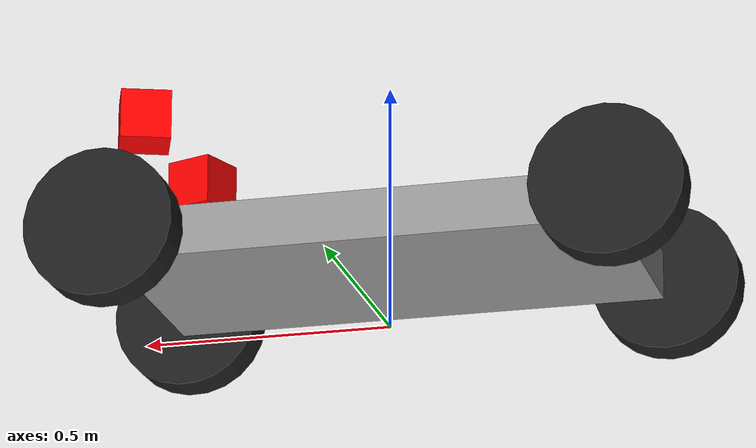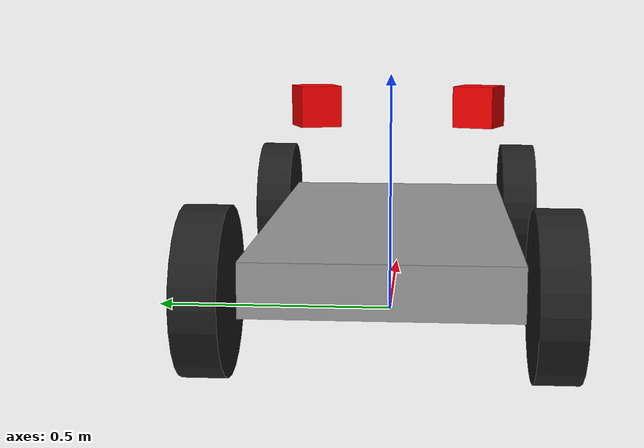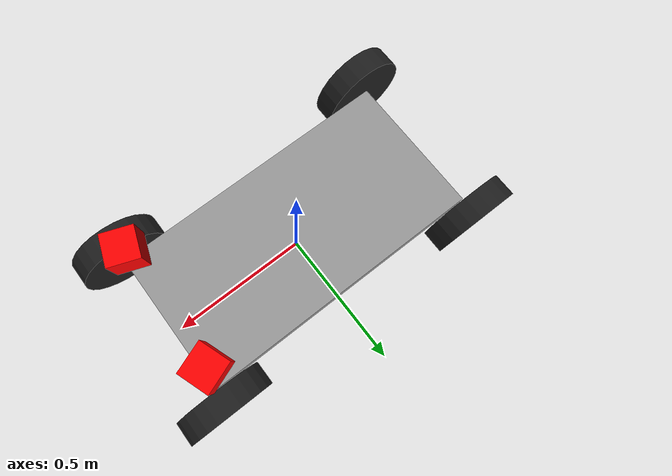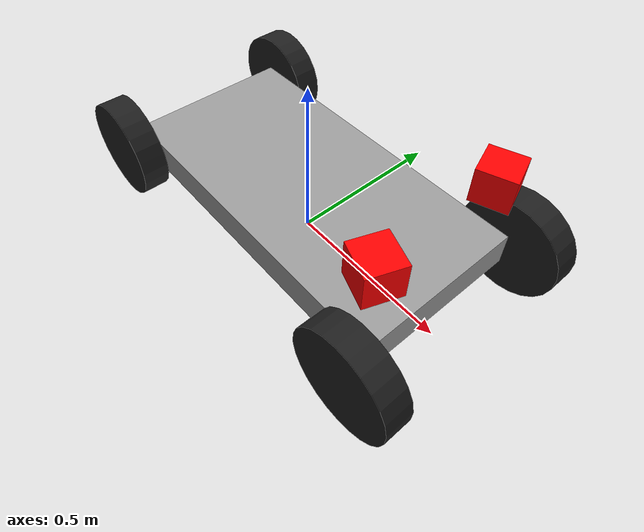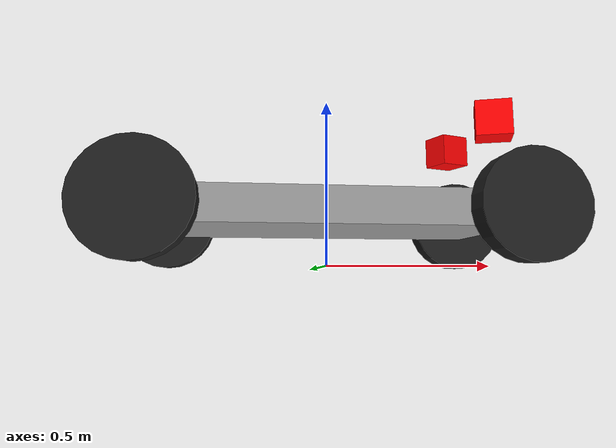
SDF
<?xml version="1.0" ?>

<sdf version="1.5">
  <model name="cart_front_steer">
    <link name="chassis">
      <pose>0 0 0.15  0 0 0</pose>
      <inertial>
        <pose>0 0 0  0 0 0</pose>
        <mass>5</mass>
        <inertia>
          <ixx>0.21666666666666667</ixx>
          <iyy>0.8416666666666667</iyy>
          <izz>1.0416666666666667</izz>
          <ixy>0</ixy>
          <ixz>0</ixz>
          <iyz>0</iyz>
        </inertia>
      </inertial>
      <collision name="collision">
        <geometry>
          <box>
            <size>1.0 0.5 0.1</size>
          </box>
        </geometry>
      </collision>
      <visual name="visual">
        <geometry>
          <box>
            <size>1.0 0.5 0.1</size>
          </box>
        </geometry>
        <material>
          <script>
            <uri>file://media/materials/scripts/gazebo.material</uri>
            <name>Gazebo/Grey</name>
          </script>
        </material>
      </visual>
    </link>

    <link name="wheel_front_left">
      <pose>0.5 0.298 0.15  -1.5707963267948966 -0.08726646259971647 0</pose>
      <inertial>
        <mass>0.5</mass>
        <inertia>
          <ixx>0.0030791666666666667</ixx>
          <iyy>0.0030791666666666667</iyy>
          <izz>0.005625</izz>
          <ixy>0</ixy>
          <ixz>0</ixz>
          <iyz>0</iyz>
        </inertia>
      </inertial>
      <collision name="collision">
        <geometry>
          <cylinder>
            <radius>0.15</radius>
            <length>0.08</length>
          </cylinder>
        </geometry>
      </collision>
      <visual name="visual">
        <geometry>
          <cylinder>
            <radius>0.15</radius>
            <length>0.08</length>
          </cylinder>
        </geometry>
        <material>
          <script>
            <uri>file://media/materials/scripts/gazebo.material</uri>
            <name>Gazebo/Black</name>
          </script>
        </material>
      </visual>
    </link>

    <joint name="wheel_front_left_steer_spin" type="fixed">
      <parent>chassis</parent>
      <child>wheel_front_left</child>
      <axis>
        <xyz>0 0 -1</xyz>
      </axis>
    </joint>

    <link name="wheel_front_right">
      <pose>0.5 -0.298 0.15  -1.5707963267948966 -0.08726646259971647 0</pose>
      <inertial>
        <mass>0.5</mass>
        <inertia>
          <ixx>0.0030791666666666667</ixx>
          <iyy>0.0030791666666666667</iyy>
          <izz>0.005625</izz>
          <ixy>0</ixy>
          <ixz>0</ixz>
          <iyz>0</iyz>
        </inertia>
      </inertial>
      <collision name="collision">
        <geometry>
          <cylinder>
            <radius>0.15</radius>
            <length>0.08</length>
          </cylinder>
        </geometry>
      </collision>
      <visual name="visual">
        <geometry>
          <cylinder>
            <radius>0.15</radius>
            <length>0.08</length>
          </cylinder>
        </geometry>
        <material>
          <script>
            <uri>file://media/materials/scripts/gazebo.material</uri>
            <name>Gazebo/Black</name>
          </script>
        </material>
      </visual>
    </link>

    <joint name="wheel_front_right_steer_spin" type="fixed">
      <parent>chassis</parent>
      <child>wheel_front_right</child>
      <axis>
        <xyz>0 0 1</xyz>
      </axis>
    </joint>

    <link name="wheel_rear_left">
      <pose>-0.5 0.298 0.15  -1.5707963267948966 0 0</pose>
      <inertial>
        <mass>0.5</mass>
        <inertia>
          <ixx>0.0030791666666666667</ixx>
          <iyy>0.0030791666666666667</iyy>
          <izz>0.005625</izz>
          <ixy>0</ixy>
          <ixz>0</ixz>
          <iyz>0</iyz>
        </inertia>
      </inertial>
      <collision name="collision">
        <geometry>
          <cylinder>
            <radius>0.15</radius>
            <length>0.08</length>
          </cylinder>
        </geometry>
      </collision>
      <visual name="visual">
        <geometry>
          <cylinder>
            <radius>0.15</radius>
            <length>0.08</length>
          </cylinder>
        </geometry>
        <material>
          <script>
            <uri>file://media/materials/scripts/gazebo.material</uri>
            <name>Gazebo/Black</name>
          </script>
        </material>
      </visual>
    </link>

    <joint name="wheel_rear_left_spin" type="fixed">
      <parent>chassis</parent>
      <child>wheel_rear_left</child>
      <axis>
        <xyz>0 0 -1</xyz>
      </axis>
    </joint>

    <link name="wheel_rear_right">
      <pose>-0.5 -0.298 0.15  -1.5707963267948966 0 0</pose>
      <inertial>
        <mass>0.5</mass>
        <inertia>
          <ixx>0.0030791666666666667</ixx>
          <iyy>0.0030791666666666667</iyy>
          <izz>0.005625</izz>
          <ixy>0</ixy>
          <ixz>0</ixz>
          <iyz>0</iyz>
        </inertia>
      </inertial>
      <collision name="collision">
        <geometry>
          <cylinder>
            <radius>0.15</radius>
            <length>0.08</length>
          </cylinder>
        </geometry>
      </collision>
      <visual name="visual">
        <geometry>
          <cylinder>
            <radius>0.15</radius>
            <length>0.08</length>
          </cylinder>
        </geometry>
        <material>
          <script>
            <uri>file://media/materials/scripts/gazebo.material</uri>
            <name>Gazebo/Black</name>
          </script>
        </material>
      </visual>
    </link>

    <joint name="wheel_rear_right_spin" type="fixed">
      <parent>chassis</parent>
      <child>wheel_rear_right</child>
      <axis>
        <xyz>0 0 1</xyz>
      </axis>
    </joint>

    <link name="left_laser_sensor_link">
      <pose>0.45 0.2 0.4 0 0 0.349066</pose>
      <collision name="collision">
        <geometry>
          <box>
            <size>0.1 0.1 0.1</size>
          </box>
        </geometry>
      </collision>
      <visual name="visual">
        <geometry>
          <box>
            <size>0.1 0.1 0.1</size>
          </box>
        </geometry>
        <material name="orange">
          <ambient>1 0 0 1</ambient>
          <diffuse>1 0 0 1</diffuse>
          <specular>0.1 0.1 0.1 1</specular>
        </material>
      </visual>
      <sensor type="ray" name="ray_left">
	<pose>0 0 0 0 0 0</pose>
        <update_rate>35.0</update_rate>
	<visualize>true</visualize>
        <ray name="laser_scan_left">
          <scan>
            <horizontal>
              <samples>360</samples>
              <resolution>1</resolution>
              <min_angle>-0.4974188</min_angle>
              <max_angle>0.4974188</max_angle>
            </horizontal>
          </scan>
          <range>
            <min>0.3</min>
            <max>2.0</max>
            <resolution>0.01</resolution>
          </range>
        </ray>
        <plugin name="laser_scan_controller_left" filename="libgazebo_ros_laser.so">
          <frameName>camera_left</frameName>
          <topicName>scan</topicName>
        </plugin>
      </sensor>
    </link>

    <joint name="laser_sensor_joint_left" type="fixed">
      <parent>chassis</parent>
      <child>left_laser_sensor_link</child>
      <axis>
        <xyz>0 0 1</xyz>
      </axis>
    </joint>

    <link name="right_laser_sensor_link">
      <pose>0.45 -0.2 0.4 0 0 -0.349066</pose>
      <collision name="collision">
        <geometry>
          <box>
            <size>0.1 0.1 0.1</size>
          </box>
        </geometry>
      </collision>
      <visual name="visual">
        <geometry>
          <box>
            <size>0.1 0.1 0.1</size>
          </box>
        </geometry>
        <material name="orange">
          <ambient>1 0 0 1</ambient>
          <diffuse>1 0 0 1</diffuse>
          <specular>0.1 0.1 0.1 1</specular>
        </material>
      </visual>
      <sensor type="ray" name="ray_right">
	<pose>0 0 0 0 0 0</pose>
        <update_rate>35.0</update_rate>
	<visualize>true</visualize>
        <ray name="laser_scan_right">
          <scan>
            <horizontal>
              <samples>360</samples>
              <resolution>1</resolution>
              <min_angle>-0.4974188</min_angle>
              <max_angle>0.4974188</max_angle>
            </horizontal>
          </scan>
          <range>
            <min>0.3</min>
            <max>2.0</max>
            <resolution>0.01</resolution>
          </range>
        </ray>
        <plugin name="laser_scan_controller_right" filename="libgazebo_ros_laser.so">
          <frameName>camera_right</frameName>
          <topicName>scan</topicName>
        </plugin>
      </sensor>
    </link>

    <joint name="laser_sensor_joint_right" type="fixed">
      <parent>chassis</parent>
      <child>right_laser_sensor_link</child>
      <axis>
        <xyz>0 0 1</xyz>
      </axis>
    </joint>

    <link name="left_camera_link">
      <pose>0.45 0.2 0.4 0 0 0.349066</pose>
      <collision name="collision">
        <geometry>
          <box>
            <size>0.1 0.1 0.1</size>
          </box>
        </geometry>
      </collision>
      <visual name="visual">
        <geometry>
          <box>
            <size>0.1 0.1 0.1</size>
          </box>
        </geometry>
        <material name="orange">
          <ambient>1 0 0 1</ambient>
          <diffuse>1 0 0 1</diffuse>
          <specular>0.1 0.1 0.1 1</specular>
        </material>
      </visual>
      <sensor type="camera" name="camera_left">
	<pose>0 0 0 0 0 0</pose>
        <update_rate>30.0</update_rate>
        <camera name="left_camera">
	  <pose>0 0 0 0 0 0</pose>
          <horizontal_fov>1.55</horizontal_fov>
          <image>
            <width>640</width>
            <height>480</height>
            <format>L8</format>
          </image>
          <clip>
            <near>0.02</near>
            <far>50</far>
          </clip>
	  <noise>
            <type>gaussian</type>
            <mean>0.0</mean>
            <stddev>0.007</stddev>
          </noise>
        </camera>
        <plugin name="left_camera_controller" filename="libgazebo_ros_camera.so">
          <alwaysOn>true</alwaysOn>
          <updateRate>30.0</updateRate>
          <cameraName>gazebo_left_camera</cameraName>
          <imageTopicName>image_raw</imageTopicName>
          <cameraInfoTopicName>camera_info</cameraInfoTopicName>
          <hackBaseline>0.07</hackBaseline>
          <frameName>left_camera_link</frameName>
        </plugin>
      </sensor>
    </link>

    <joint name="camera_joint_left" type="fixed">
      <parent>chassis</parent>
      <child>left_camera_link</child>
      <axis>
        <xyz>0 0 1</xyz>
      </axis>
    </joint>

    <link name="right_camera_link">
      <pose>0.45 -0.2 0.4 0 0 -0.349066</pose>
      <collision name="collision">
        <geometry>
          <box>
            <size>0.1 0.1 0.1</size>
          </box>
        </geometry>
      </collision>
      <visual name="visual">
        <geometry>
          <box>
            <size>0.1 0.1 0.1</size>
          </box>
        </geometry>
        <material name="orange">
          <ambient>1 0 0 1</ambient>
          <diffuse>1 0 0 1</diffuse>
          <specular>0.1 0.1 0.1 1</specular>
        </material>
      </visual>
      <sensor type="camera" name="camera_right">
	<pose>0 0 0 0 0 0</pose>
        <update_rate>30.0</update_rate>
        <camera name="right_camera">
	  <pose>0 0 0 0 0 0</pose>
          <horizontal_fov>1.55</horizontal_fov>
          <image>
            <width>640</width>
            <height>480</height>
            <format>L8</format>
          </image>
          <clip>
            <near>0.02</near>
            <far>50</far>
          </clip>
	  <noise>
            <type>gaussian</type>
            <mean>0.0</mean>
            <stddev>0.007</stddev>
          </noise>
        </camera>
        <plugin name="right_camera_controller" filename="libgazebo_ros_camera.so">
          <alwaysOn>true</alwaysOn>
          <updateRate>30.0</updateRate>
          <cameraName>gazebo_right_camera</cameraName>
          <imageTopicName>image_raw</imageTopicName>
          <cameraInfoTopicName>camera_info</cameraInfoTopicName>
          <hackBaseline>0.07</hackBaseline>
          <frameName>right_camera_link</frameName>
        </plugin>
      </sensor>
    </link>

    <joint name="camera_joint_right" type="fixed">
      <parent>chassis</parent>
      <child>right_camera_link</child>
      <axis>
        <xyz>0 0 1</xyz>
      </axis>
    </joint>

  </model>
</sdf>
